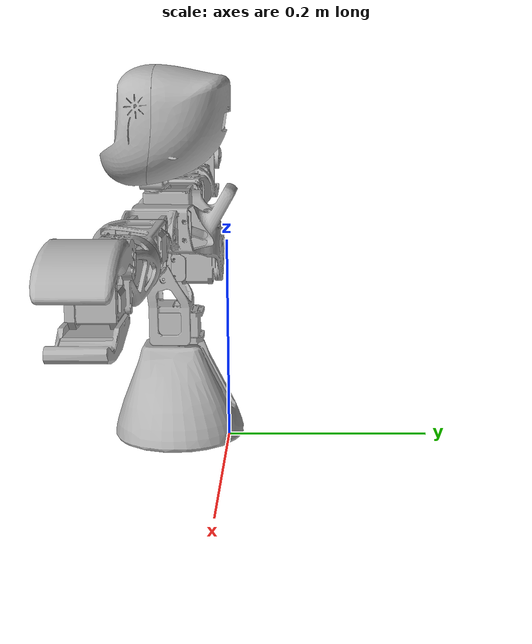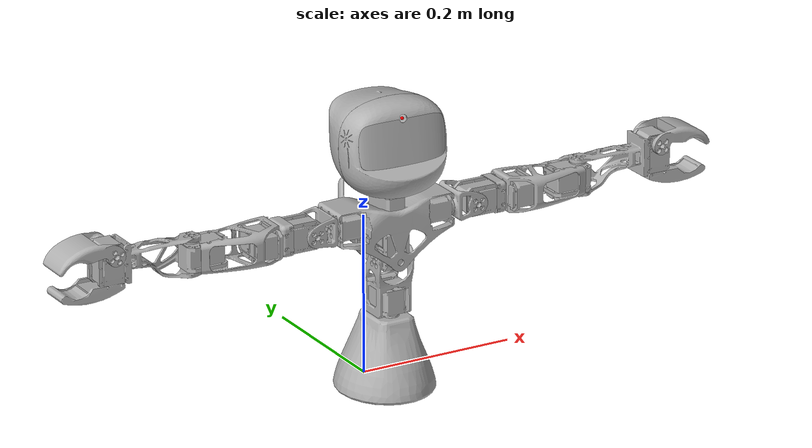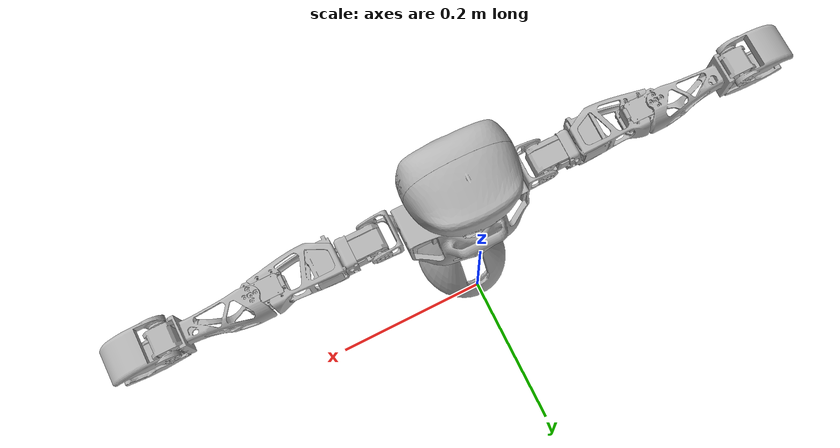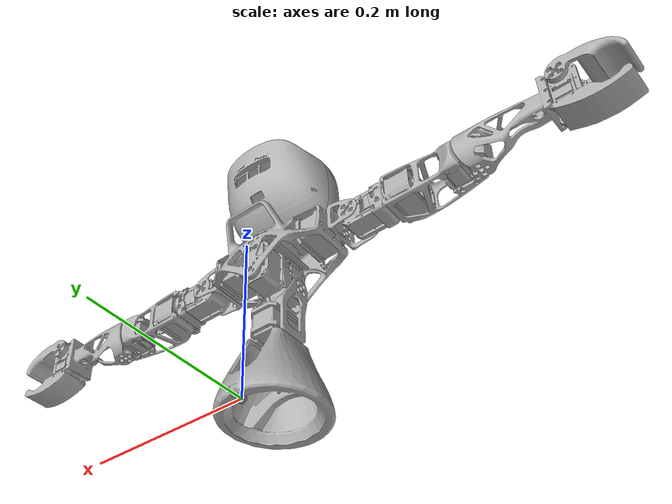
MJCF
<mujoco model="Cogni-robot">

  <default>
    <geom contype="1" conaffinity="0" density="1000" condim="3" solref="0.002 1" solimp="0.9 0.95 0.001"/>

    <default class="sts3215">
         <joint damping="1.0" frictionloss="0.1" armature="0.01"/>
         <position kp="40" kv="4" forcerange="-4.0 4.0"/>
    </default>
  </default>

  <compiler angle="radian" meshdir="../meshes/" discardvisual="false"/>

  <asset>
    <material name="default_material" rgba="0.7 0.7 0.7 1" />
    <mesh name="base_link.stl" file="base_link.stl" scale="0.001 0.001 0.001" />
    <mesh name="servo_sts3215_v1_1.stl" file="servo_sts3215_v1_1.stl" scale="0.001 0.001 0.001" />
    <mesh name="spine_default_1.stl" file="spine_default_1.stl" scale="0.001 0.001 0.001" />
    <mesh name="servo_sts3215_v1__1__1.stl" file="servo_sts3215_v1__1__1.stl" scale="0.001 0.001 0.001" />
    <mesh name="double_rotation_link_double_feetech_v1_1.stl" file="double_rotation_link_double_feetech_v1_1.stl" scale="0.001 0.001 0.001" />
    <mesh name="servo_sts3215_v1__2__1.stl" file="servo_sts3215_v1__2__1.stl" scale="0.001 0.001 0.001" />
    <mesh name="chest_1.stl" file="chest_1.stl" scale="0.001 0.001 0.001" />
    <mesh name="servo_sts3215_v1__3__1.stl" file="servo_sts3215_v1__3__1.stl" scale="0.001 0.001 0.001" />
    <mesh name="shoulder_left_v1_1.stl" file="shoulder_left_v1_1.stl" scale="0.001 0.001 0.001" />
    <mesh name="servo_sts3215_v1__9__1.stl" file="servo_sts3215_v1__9__1.stl" scale="0.001 0.001 0.001" />
    <mesh name="arm_connector_Feetech_v1__1__1.stl" file="arm_connector_Feetech_v1__1__1.stl" scale="0.001 0.001 0.001" />
    <mesh name="servo_sts3215_v1__10__1.stl" file="servo_sts3215_v1__10__1.stl" scale="0.001 0.001 0.001" />
    <mesh name="upper_arm_double_right_v1__1__1.stl" file="upper_arm_double_right_v1__1__1.stl" scale="0.001 0.001 0.001" />
    <mesh name="servo_sts3215_v1__11__1.stl" file="servo_sts3215_v1__11__1.stl" scale="0.001 0.001 0.001" />
    <mesh name="avant_bras_left_1.stl" file="avant_bras_left_1.stl" scale="0.001 0.001 0.001" />
    <mesh name="servo_sts3215_v1__12__1.stl" file="servo_sts3215_v1__12__1.stl" scale="0.001 0.001 0.001" />
    <mesh name="Prehenseur_fifty_fifty_Main_right_v1__1__1.stl" file="Prehenseur_fifty_fifty_Main_right_v1__1__1.stl" scale="0.001 0.001 0.001" />
    <mesh name="Prehenseur_fifty_fifty_Pousse_right_v1__1__1.stl" file="Prehenseur_fifty_fifty_Pousse_right_v1__1__1.stl" scale="0.001 0.001 0.001" />
    <mesh name="servo_sts3215_v1__4__1.stl" file="servo_sts3215_v1__4__1.stl" scale="0.001 0.001 0.001" />
    <mesh name="shoulder_right_v1_1.stl" file="shoulder_right_v1_1.stl" scale="0.001 0.001 0.001" />
    <mesh name="servo_sts3215_v1__5__1.stl" file="servo_sts3215_v1__5__1.stl" scale="0.001 0.001 0.001" />
    <mesh name="arm_connector_Feetech_v1_1.stl" file="arm_connector_Feetech_v1_1.stl" scale="0.001 0.001 0.001" />
    <mesh name="servo_sts3215_v1__6__1.stl" file="servo_sts3215_v1__6__1.stl" scale="0.001 0.001 0.001" />
    <mesh name="upper_arm_double_right_v1_1.stl" file="upper_arm_double_right_v1_1.stl" scale="0.001 0.001 0.001" />
    <mesh name="servo_sts3215_v1__7__1.stl" file="servo_sts3215_v1__7__1.stl" scale="0.001 0.001 0.001" />
    <mesh name="avant_bras_right_v1_1.stl" file="avant_bras_right_v1_1.stl" scale="0.001 0.001 0.001" />
    <mesh name="servo_sts3215_v1__8__1.stl" file="servo_sts3215_v1__8__1.stl" scale="0.001 0.001 0.001" />
    <mesh name="Prehenseur_fifty_fifty_Pousse_right_v1_1.stl" file="Prehenseur_fifty_fifty_Pousse_right_v1_1.stl" scale="0.001 0.001 0.001" />
    <mesh name="Prehenseur_fifty_fifty_Main_right_v1_1.stl" file="Prehenseur_fifty_fifty_Main_right_v1_1.stl" scale="0.001 0.001 0.001" />
    <mesh name="servo_sts3215-2_1.stl" file="servo_sts3215-2_1.stl" scale="0.001 0.001 0.001" />
    <mesh name="neck_v2_1.stl" file="neck_v2_1.stl" scale="0.001 0.001 0.001" />
    <mesh name="servo-sts3215-2_1.stl" file="servo-sts3215-2_1.stl" scale="0.001 0.001 0.001" />
    <mesh name="head_back_v2_1.stl" file="head_back_v2_1.stl" scale="0.001 0.001 0.001" />
    <mesh name="head_face_v1_1.stl" file="head_face_v1_1.stl" scale="0.001 0.001 0.001" />
    <mesh name="screen_v1_1.stl" file="screen_v1_1.stl" scale="0.001 0.001 0.001" />
    <mesh name="double_rotation_link_double_feetech_v1__1__1.stl" file="double_rotation_link_double_feetech_v1__1__1.stl" scale="0.001 0.001 0.001" />
  </asset>

  <worldbody>
    <!-- Robot -->
    <body name="root" pos="0 0 1.1102230246251565e-16" quat="1 0 0 0">
      <site name="root_site" pos="0 0 0" quat="1 0 0 0" />
      <!-- Position de la base du robot -->
      <body name="base_link" pos="0 0 0.045" quat="1 0 0 0">
        <inertial pos="-1.1219501603328655e-05 -0.056526453492820504 -0.007126953017833521" quat="1.0 0.0 0.0 0.0" mass="1.000" diaginertia="0.002516 0.00237 0.002929" />
        <geom name="base_link_collision_0" pos="0 0 0" quat="1.0 0.0 0.0 0.0" type="mesh" mesh="base_link.stl" rgba="0 0 0 0" />
        <geom name="base_link_visual_0" pos="0 0 0" quat="1.0 0.0 0.0 0.0" material="default_material" type="mesh" mesh="base_link.stl" />
        <body name="servo_taille" pos="2e-06 -0.064517 0.050918" quat="1.0 0.0 0.0 0.0">
          <joint name="rotation_taille" class="sts3215" type="hinge" range="-1.95 1.95" axis="0.0 -0.0 -1.0" />
          <inertial pos="2.4590533479708028e-05 0.013876940357002876 0.018114364058204026" quat="1.0 0.0 0.0 0.0" mass="0.063" diaginertia="9.9e-05 5.8e-05 9.2e-05" />
          <geom name="servo_sts3215_v1_1_collision_0" pos="-2e-06 0.064517 -0.050918" quat="1.0 0.0 0.0 0.0" type="mesh" mesh="servo_sts3215_v1_1.stl" rgba="0 0 0 0" />
          <geom name="servo_sts3215_v1_1_visual_0" pos="-2e-06 0.064517 -0.050918" quat="1.0 0.0 0.0 0.0" material="default_material" type="mesh" mesh="servo_sts3215_v1_1.stl" />
          <body name="spine_default_1" pos="-0.014996 -0.002914 0.034531" quat="1.0 0.0 0.0 0.0">
            <inertial pos="0.015025892749360163 0.009651890072813522 0.005568688082809373" quat="1.0 0.0 0.0 0.0" mass="0.060" diaginertia="0.00011 0.000136 8.4e-05" />
            <geom name="spine_default_1_collision_0" pos="0.014994 0.067431 -0.085449" quat="1.0 0.0 0.0 0.0" type="mesh" mesh="spine_default_1.stl" rgba="0 0 0 0" />
            <geom name="spine_default_1_visual_0" pos="0.014994 0.067431 -0.085449" quat="1.0 0.0 0.0 0.0" material="default_material" type="mesh" mesh="spine_default_1.stl" />
            <body name="servo_roulis_torse" pos="0.0334 0.001747 0.038861" quat="1.0 0.0 0.0 0.0">
              <joint name="rotation_roulis_torse" class="sts3215" type="hinge" range="-0.436332 0.959931" axis="1.0 0.0 0.0" />
              <inertial pos="-0.018113958627718682 -2.3729273459310862e-05 0.013877191834498925" quat="1.0 0.0 0.0 0.0" mass="0.063" diaginertia="9.2e-05 9.9e-05 5.8e-05" />
              <geom name="servo_sts3215_v1__1__1_collision_0" pos="-0.018406 0.065684 -0.12431" quat="1.0 0.0 0.0 0.0" type="mesh" mesh="servo_sts3215_v1__1__1.stl" rgba="0 0 0 0" />
              <geom name="servo_sts3215_v1__1__1_visual_0" pos="-0.018406 0.065684 -0.12431" quat="1.0 0.0 0.0 0.0" material="default_material" type="mesh" mesh="servo_sts3215_v1__1__1.stl" />
              <body name="double_rotation_link_double_feetech_v1_1" pos="-0.00455 0.014996 0.014086" quat="1.0 0.0 0.0 0.0">
                <inertial pos="0.002024750176840232 0.003710607069467957 -0.008500173682925022" quat="1.0 0.0 0.0 0.0" mass="0.010" diaginertia="1e-06 1e-06 0.0" />
                <geom name="double_rotation_link_double_feetech_v1_1_collision_0" pos="-0.013856 0.050688 -0.138396" quat="1.0 0.0 0.0 0.0" type="mesh" mesh="double_rotation_link_double_feetech_v1_1.stl" rgba="0 0 0 0" />
                <geom name="double_rotation_link_double_feetech_v1_1_visual_0" pos="-0.013856 0.050688 -0.138396" quat="1.0 0.0 0.0 0.0" material="default_material" type="mesh" mesh="double_rotation_link_double_feetech_v1_1.stl" />
                <body name="servo_sts3215_v1__2__1" pos="-0.0001 0.0069 -0.017" quat="1.0 0.0 0.0 0.0">
                  <inertial pos="-0.014980074180713072 0.016417183569695955 0.01679119183449934" quat="1.0 0.0 0.0 0.0" mass="0.063" diaginertia="9.9e-05 9.2e-05 5.8e-05" />
                  <geom name="servo_sts3215_v1__2__1_collision_0" pos="-0.013756 0.043788 -0.121396" quat="1.0 0.0 0.0 0.0" type="mesh" mesh="servo_sts3215_v1__2__1.stl" rgba="0 0 0 0" />
                  <geom name="servo_sts3215_v1__2__1_visual_0" pos="-0.013756 0.043788 -0.121396" quat="1.0 0.0 0.0 0.0" material="default_material" type="mesh" mesh="servo_sts3215_v1__2__1.stl" />
                  <body name="poitrine" pos="-0.015004 0.034532 0.002914" quat="1.0 0.0 0.0 0.0">
                    <joint name="rotation_tangage_torse" class="sts3215" type="hinge" range="-0.698132 0.785398" axis="0.0 -1.0 0.0" />
                    <inertial pos="0.00015427959004198446 -0.03577287736870712 0.04773966957719847" quat="1.0 0.0 0.0 0.0" mass="0.250" diaginertia="0.000783 0.001095 0.001456" />
                    <geom name="chest_1_collision_0" pos="0.001248 0.009256 -0.12431" quat="1.0 0.0 0.0 0.0" type="mesh" mesh="chest_1.stl" rgba="0 0 0 0" />
                    <geom name="chest_1_visual_0" pos="0.001248 0.009256 -0.12431" quat="1.0 0.0 0.0 0.0" material="default_material" type="mesh" mesh="chest_1.stl" />
                    <body name="servo_sts3215_v1__3__1" pos="0.072458 -0.189067 -0.071966" quat="1.0 0.0 0.0 0.0">
                      <inertial pos="-0.012768569454018337 0.14162474034428557 0.12350985679084983" quat="1.0 0.0 0.0 0.0" mass="0.063" diaginertia="9.2e-05 5.8e-05 9.9e-05" />
                      <geom name="servo_sts3215_v1__3__1_collision_0" pos="-0.07121 0.198323 -0.052344" quat="1.0 0.0 0.0 0.0" type="mesh" mesh="servo_sts3215_v1__3__1.stl" rgba="0 0 0 0" />
                      <geom name="servo_sts3215_v1__3__1_visual_0" pos="-0.07121 0.198323 -0.052344" quat="1.0 0.0 0.0 0.0" material="default_material" type="mesh" mesh="servo_sts3215_v1__3__1.stl" />
                      <body name="epaule_gauche" pos="0.005346 0.127748 0.123486" quat="1.0 0.0 0.0 0.0">
                        <joint name="rotation_epaule_zy_gauche" class="sts3215" type="hinge" range="-0.96 3.926991" axis="-1.0 0.0 -0.0" />
                        <inertial pos="0.013069081541579305 0.007818922979524329 0.0014314415043581996" quat="1.0 0.0 0.0 0.0" mass="0.030" diaginertia="3.4e-05 2.1e-05 3.9e-05" />
                        <geom name="shoulder_left_v1_1_collision_0" pos="-0.076556 0.070575 -0.17583" quat="1.0 0.0 0.0 0.0" type="mesh" mesh="shoulder_left_v1_1.stl" rgba="0 0 0 0" />
                        <geom name="shoulder_left_v1_1_visual_0" pos="-0.076556 0.070575 -0.17583" quat="1.0 0.0 0.0 0.0" material="default_material" type="mesh" mesh="shoulder_left_v1_1.stl" />
                        <body name="servo_epaule_xy_gauche" pos="0.03009 -0.009968 -8e-06" quat="1.0 0.0 0.0 0.0">
                          <joint name="rotation_epaule_xy_gauche" class="sts3215" type="hinge" range="-1.80 1.67" axis="-0.0 -1.0 0.0" />
                          <inertial pos="0.01387684152521737 0.018114728191638348 2.3728104074888234e-05" quat="1.0 0.0 0.0 0.0" mass="0.063" diaginertia="5.8e-05 9.2e-05 9.9e-05" />
                          <geom name="servo_sts3215_v1__9__1_collision_0" pos="-0.106646 0.080543 -0.175822" quat="1.0 0.0 0.0 0.0" type="mesh" mesh="servo_sts3215_v1__9__1.stl" rgba="0 0 0 0" />
                          <geom name="servo_sts3215_v1__9__1_visual_0" pos="-0.106646 0.080543 -0.175822" quat="1.0 0.0 0.0 0.0" material="default_material" type="mesh" mesh="servo_sts3215_v1__9__1.stl" />
                          <body name="arm_connector_Feetech_v1__1__1" pos="-0.131532 -0.148625 0.075992" quat="1.0 0.0 0.0 0.0">
                            <inertial pos="0.17019711259990794 0.1701672691210283 -0.07599164900255378" quat="1.0 0.0 0.0 0.0" mass="0.020" diaginertia="1.7e-05 9e-06 1e-05" />
                            <geom name="arm_connector_Feetech_v1__1__1_collision_0" pos="0.024886 0.229168 -0.251814" quat="1.0 0.0 0.0 0.0" type="mesh" mesh="arm_connector_Feetech_v1__1__1.stl" rgba="0 0 0 0" />
                            <geom name="arm_connector_Feetech_v1__1__1_visual_0" pos="0.024886 0.229168 -0.251814" quat="1.0 0.0 0.0 0.0" material="default_material" type="mesh" mesh="arm_connector_Feetech_v1__1__1.stl" />
                            <body name="servo_biceps_gauche" pos="0.175717 0.178097 -0.076092" quat="1.0 0.0 0.0 0.0">
                              <joint name="rotation_biceps_gauche" class="sts3215" type="hinge" range="-1.570796 1.658063" axis="-1.0 0.0 0.0" />
                              <inertial pos="0.01811490301050525 -0.013877229014664351 2.404053025442665e-05" quat="1.0 0.0 0.0 0.0" mass="0.063" diaginertia="9.2e-05 5.8e-05 9.9e-05" />
                              <geom name="servo_sts3215_v1__10__1_collision_0" pos="-0.150831 0.051071 -0.175722" quat="1.0 0.0 0.0 0.0" type="mesh" mesh="servo_sts3215_v1__10__1.stl" rgba="0 0 0 0" />
                              <geom name="servo_sts3215_v1__10__1_visual_0" pos="-0.150831 0.051071 -0.175722" quat="1.0 0.0 0.0 0.0" material="default_material" type="mesh" mesh="servo_sts3215_v1__10__1.stl" />
                              <body name="upper_arm_double_right_v1__1__1" pos="-0.172025 0.142882 0.082157" quat="1.0 0.0 0.0 0.0">
                                <inertial pos="0.22087327265401402 -0.15592362178307972 -0.08201641031321949" quat="1.0 0.0 0.0 0.0" mass="0.070" diaginertia="8.4e-05 0.00017 0.000183" />
                                <geom name="upper_arm_double_right_v1__1__1_collision_0" pos="0.021194 -0.091811 -0.257879" quat="1.0 0.0 0.0 0.0" type="mesh" mesh="upper_arm_double_right_v1__1__1.stl" rgba="0 0 0 0" />
                                <geom name="upper_arm_double_right_v1__1__1_visual_0" pos="0.021194 -0.091811 -0.257879" quat="1.0 0.0 0.0 0.0" material="default_material" type="mesh" mesh="upper_arm_double_right_v1__1__1.stl" />
                                <body name="servo_sts3215_v1__11__1" pos="0.241626 -0.145968 -0.066944" quat="1.0 0.0 0.0 0.0">
                                  <inertial pos="0.023508770620472463 -0.008519981071643715 -0.013563488463505524" quat="1.0 0.0 0.0 0.0" mass="0.063" diaginertia="5.8e-05 9.9e-05 9.2e-05" />
                                  <geom name="servo_sts3215_v1__11__1_collision_0" pos="-0.220432 0.054157 -0.190935" quat="1.0 0.0 0.0 0.0" type="mesh" mesh="servo_sts3215_v1__11__1.stl" rgba="0 0 0 0" />
                                  <geom name="servo_sts3215_v1__11__1_visual_0" pos="-0.220432 0.054157 -0.190935" quat="1.0 0.0 0.0 0.0" material="default_material" type="mesh" mesh="servo_sts3215_v1__11__1.stl" />
                                  <body name="avant_bras_gauche" pos="0.037386 -0.008496 0.004551" quat="1.0 0.0 0.0 0.0">
                                    <joint name="rotation_coude_gauche" class="sts3215" type="hinge" range="0.0 2.40" axis="0.0 -0.0 -1.0" />
                                    <inertial pos="0.04401274040087039 0.008650758693461914 -0.013814967864695243" quat="1.0 0.0 0.0 0.0" mass="0.080" diaginertia="7.3e-05 0.000311 0.000295" />
                                    <geom name="avant_bras_left_1_collision_0" pos="-0.257818 0.062653 -0.195486" quat="1.0 0.0 0.0 0.0" type="mesh" mesh="avant_bras_left_1.stl" rgba="0 0 0 0" />
                                    <geom name="avant_bras_left_1_visual_0" pos="-0.257818 0.062653 -0.195486" quat="1.0 0.0 0.0 0.0" material="default_material" type="mesh" mesh="avant_bras_left_1.stl" />
                                    <body name="servo_sts3215_v1__12__1" pos="0.073594 0.204126 -0.366567" quat="1.0 0.0 0.0 0.0">
                                      <inertial pos="0.03147486599174237 -0.2013020696547163 0.3583558952391649" quat="1.0 0.0 0.0 0.0" mass="0.063" diaginertia="9.9e-05 9.2e-05 5.8e-05" />
                                      <geom name="servo_sts3215_v1__12__1_collision_0" pos="-0.331412 -0.141473 0.171081" quat="1.0 0.0 0.0 0.0" type="mesh" mesh="servo_sts3215_v1__12__1.stl" rgba="0 0 0 0" />
                                      <geom name="servo_sts3215_v1__12__1_visual_0" pos="-0.331412 -0.141473 0.171081" quat="1.0 0.0 0.0 0.0" material="default_material" type="mesh" mesh="servo_sts3215_v1__12__1.stl" />
                                      <body name="main_gauche" pos="0.031451 -0.219416 0.372233" quat="1.0 0.0 0.0 0.0">
                                        <joint name="rotation_pince_gauche" class="sts3215" type="hinge" range="-1.570796 0.401426" axis="0.0 1.0 -0.0" />
                                        <inertial pos="0.03632040746598875 0.018552363625857257 0.005882952672508379" quat="1.0 0.0 0.0 0.0" mass="0.080" diaginertia="7.9e-05 0.000109 0.000166" />
                                        <geom name="Prehenseur_fifty_fifty_Main_right_v1__1__1_collision_0" pos="-0.362863 0.077943 -0.201152" quat="1.0 0.0 0.0 0.0" type="mesh" mesh="Prehenseur_fifty_fifty_Main_right_v1__1__1.stl" rgba="0 0 0 0" />
                                        <geom name="Prehenseur_fifty_fifty_Main_right_v1__1__1_visual_0" pos="-0.362863 0.077943 -0.201152" quat="1.0 0.0 0.0 0.0" material="default_material" type="mesh" mesh="Prehenseur_fifty_fifty_Main_right_v1__1__1.stl" />
                                      </body>
                                      <body name="Prehenseur_fifty_fifty_Pousse_right_v1__1__1" pos="0.104844 -0.364483 0.7141" quat="1.0 0.0 0.0 0.0">
                                        <inertial pos="-0.04738040301219948 0.1644526771798254 -0.38698301391426126" quat="1.0 0.0 0.0 0.0" mass="0.050" diaginertia="2.9e-05 9.5e-05 0.000118" />
                                        <geom name="Prehenseur_fifty_fifty_Pousse_right_v1__1__1_collision_0" pos="-0.436256 0.22301 -0.543019" quat="1.0 0.0 0.0 0.0" type="mesh" mesh="Prehenseur_fifty_fifty_Pousse_right_v1__1__1.stl" rgba="0 0 0 0" />
                                        <geom name="Prehenseur_fifty_fifty_Pousse_right_v1__1__1_visual_0" pos="-0.436256 0.22301 -0.543019" quat="1.0 0.0 0.0 0.0" material="default_material" type="mesh" mesh="Prehenseur_fifty_fifty_Pousse_right_v1__1__1.stl" />
                                      </body>
                                    </body>
                                  </body>
                                </body>
                              </body>
                            </body>
                          </body>
                        </body>
                      </body>
                    </body>
                    <body name="servo_sts3215_v1__4__1" pos="-0.075142 -0.189067 -0.071966" quat="1.0 0.0 0.0 0.0">
                      <inertial pos="0.01535895970710844 0.14162474034429673 0.12346961705796619" quat="1.0 0.0 0.0 0.0" mass="0.063" diaginertia="9.2e-05 5.8e-05 9.9e-05" />
                      <geom name="servo_sts3215_v1__4__1_collision_0" pos="0.07639 0.198323 -0.052344" quat="1.0 0.0 0.0 0.0" type="mesh" mesh="servo_sts3215_v1__4__1.stl" rgba="0 0 0 0" />
                      <geom name="servo_sts3215_v1__4__1_visual_0" pos="0.07639 0.198323 -0.052344" quat="1.0 0.0 0.0 0.0" material="default_material" type="mesh" mesh="servo_sts3215_v1__4__1.stl" />
                      <body name="epaule_droite" pos="-0.002755 0.127748 0.123494" quat="1.0 0.0 0.0 0.0">
                        <joint name="rotation_epaule_zy_droite" class="sts3215" type="hinge" range="-3.93 0.959931" axis="1.0 -0.0 -0.0" />
                        <inertial pos="-0.01306709110545963 0.007820696038384783 0.0014317075357701825" quat="1.0 0.0 0.0 0.0" mass="0.030" diaginertia="3.4e-05 2.1e-05 3.9e-05" />
                        <geom name="shoulder_right_v1_1_collision_0" pos="0.079145 0.070575 -0.175838" quat="1.0 0.0 0.0 0.0" type="mesh" mesh="shoulder_right_v1_1.stl" rgba="0 0 0 0" />
                        <geom name="shoulder_right_v1_1_visual_0" pos="0.079145 0.070575 -0.175838" quat="1.0 0.0 0.0 0.0" material="default_material" type="mesh" mesh="shoulder_right_v1_1.stl" />
                        <body name="servo_epaule_xy_droite" pos="-0.03009 -0.009968 -8e-06" quat="1.0 0.0 0.0 0.0">
                          <joint name="rotation_epaule_xy_droite" class="sts3215" type="hinge" range="-1.80 1.67" axis="0.0 1.0 -0.0" />
                          <inertial pos="-0.013877451272128485 0.01811472819166042 -2.4511628808843167e-05" quat="1.0 0.0 0.0 0.0" mass="0.063" diaginertia="5.8e-05 9.2e-05 9.9e-05" />
                          <geom name="servo_sts3215_v1__5__1_collision_0" pos="0.109235 0.080543 -0.17583" quat="1.0 0.0 0.0 0.0" type="mesh" mesh="servo_sts3215_v1__5__1.stl" rgba="0 0 0 0" />
                          <geom name="servo_sts3215_v1__5__1_visual_0" pos="0.109235 0.080543 -0.17583" quat="1.0 0.0 0.0 0.0" material="default_material" type="mesh" mesh="servo_sts3215_v1__5__1.stl" />
                          <body name="arm_connector_Feetech_v1_1" pos="-0.159121 -0.148625 -0.075992" quat="1.0 0.0 0.0 0.0">
                            <inertial pos="0.12045527765318095 0.17016726912105506 0.07599086547781965" quat="1.0 0.0 0.0 0.0" mass="0.020" diaginertia="1.7e-05 9e-06 1e-05" />
                            <geom name="arm_connector_Feetech_v1_1_collision_0" pos="0.268356 0.229168 -0.099838" quat="1.0 0.0 0.0 0.0" type="mesh" mesh="arm_connector_Feetech_v1_1.stl" rgba="0 0 0 0" />
                            <geom name="arm_connector_Feetech_v1_1_visual_0" pos="0.268356 0.229168 -0.099838" quat="1.0 0.0 0.0 0.0" material="default_material" type="mesh" mesh="arm_connector_Feetech_v1_1.stl" />
                            <body name="servo_biceps_droit" pos="0.114935 0.178097 0.076091" quat="1.0 0.0 0.0 0.0">
                              <joint name="rotation_biceps_droit" class="sts3215" type="hinge" range="-1.745329 1.745329" axis="1.0 -0.0 0.0" />
                              <inertial pos="-0.018114512757417434 -0.01387722901463357 -2.3824054988352827e-05" quat="1.0 0.0 0.0 0.0" mass="0.063" diaginertia="9.2e-05 5.8e-05 9.9e-05" />
                              <geom name="servo_sts3215_v1__6__1_collision_0" pos="0.153421 0.051071 -0.175929" quat="1.0 0.0 0.0 0.0" type="mesh" mesh="servo_sts3215_v1__6__1.stl" rgba="0 0 0 0" />
                              <geom name="servo_sts3215_v1__6__1_visual_0" pos="0.153421 0.051071 -0.175929" quat="1.0 0.0 0.0 0.0" material="default_material" type="mesh" mesh="servo_sts3215_v1__6__1.stl" />
                              <body name="upper_arm_double_right_v1_1" pos="0.172225 -0.170472 -0.065156" quat="1.0 0.0 0.0 0.0">
                                <inertial pos="-0.22107288240092587 0.15743037821695768 0.0650156267884857" quat="1.0 0.0 0.0 0.0" mass="0.070" diaginertia="8.4e-05 0.00017 0.000183" />
                                <geom name="upper_arm_double_right_v1_1_collision_0" pos="-0.018804 0.221543 -0.110773" quat="1.0 0.0 0.0 0.0" type="mesh" mesh="upper_arm_double_right_v1_1.stl" rgba="0 0 0 0" />
                                <geom name="upper_arm_double_right_v1_1_visual_0" pos="-0.018804 0.221543 -0.110773" quat="1.0 0.0 0.0 0.0" material="default_material" type="mesh" mesh="upper_arm_double_right_v1_1.stl" />
                                <body name="servo_sts3215_v1__7__1" pos="-0.248126 0.145236 0.080352" quat="1.0 0.0 0.0 0.0">
                                  <inertial pos="-0.017208380367383813 0.015020258661285056 -0.01356346876911077" quat="1.0 0.0 0.0 0.0" mass="0.063" diaginertia="5.8e-05 9.9e-05 9.2e-05" />
                                  <geom name="servo_sts3215_v1__7__1_collision_0" pos="0.229322 0.076307 -0.191125" quat="1.0 0.0 0.0 0.0" type="mesh" mesh="servo_sts3215_v1__7__1.stl" rgba="0 0 0 0" />
                                  <geom name="servo_sts3215_v1__7__1_visual_0" pos="0.229322 0.076307 -0.191125" quat="1.0 0.0 0.0 0.0" material="default_material" type="mesh" mesh="servo_sts3215_v1__7__1.stl" />
                                  <body name="avant_bras_droit" pos="-0.031085 0.014996 0.004551" quat="1.0 0.0 0.0 0.0">
                                    <joint name="rotation_coude_droit" class="sts3215" type="hinge" range="-2.4 0.0" axis="-0.0 -0.0 -1.0" />
                                    <inertial pos="-0.04401322687622705 0.008650797389780515 -0.013814355351612906" quat="1.0 0.0 0.0 0.0" mass="0.080" diaginertia="7.3e-05 0.000311 0.000295" />
                                    <geom name="avant_bras_right_v1_1_collision_0" pos="0.260407 0.061311 -0.195676" quat="1.0 0.0 0.0 0.0" type="mesh" mesh="avant_bras_right_v1_1.stl" rgba="0 0 0 0" />
                                    <geom name="avant_bras_right_v1_1_visual_0" pos="0.260407 0.061311 -0.195676" quat="1.0 0.0 0.0 0.0" material="default_material" type="mesh" mesh="avant_bras_right_v1_1.stl" />
                                    <body name="servo_sts3215_v1__8__1" pos="-0.090049 -0.01094 0.00858" quat="1.0 0.0 0.0 0.0">
                                      <inertial pos="-0.014980236005768921 0.01356378910879575 -0.016791085066439754" quat="1.0 0.0 0.0 0.0" mass="0.063" diaginertia="9.9e-05 9.2e-05 5.8e-05" />
                                      <geom name="servo_sts3215_v1__8__1_collision_0" pos="0.350456 0.072251 -0.204256" quat="1.0 0.0 0.0 0.0" type="mesh" mesh="servo_sts3215_v1__8__1.stl" rgba="0 0 0 0" />
                                      <geom name="servo_sts3215_v1__8__1_visual_0" pos="0.350456 0.072251 -0.204256" quat="1.0 0.0 0.0 0.0" material="default_material" type="mesh" mesh="servo_sts3215_v1__8__1.stl" />
                                      <body name="Prehenseur_fifty_fifty_Pousse_right_v1_1" pos="0.057247 -0.149807 -0.37237" quat="1.0 0.0 0.0 0.0">
                                        <inertial pos="-0.09825620673470975 0.16512151311312523 0.3243400057801342" quat="1.0 0.0 0.0 0.0" mass="0.050" diaginertia="2.9e-05 9.5e-05 0.000118" />
                                        <geom name="Prehenseur_fifty_fifty_Pousse_right_v1_1_collision_0" pos="0.293209 0.222058 0.168114" quat="1.0 0.0 0.0 0.0" type="mesh" mesh="Prehenseur_fifty_fifty_Pousse_right_v1_1.stl" rgba="0 0 0 0" />
                                        <geom name="Prehenseur_fifty_fifty_Pousse_right_v1_1_visual_0" pos="0.293209 0.222058 0.168114" quat="1.0 0.0 0.0 0.0" material="default_material" type="mesh" mesh="Prehenseur_fifty_fifty_Pousse_right_v1_1.stl" />
                                      </body>
                                      <body name="main_droite" pos="-0.015004 -0.004551 -0.002914" quat="1.0 0.0 0.0 0.0">
                                        <joint name="rotation_pince_droite" class="sts3215" type="hinge" range="-0.401426 1.745329" axis="0.0 1.0 -0.0" />
                                        <inertial pos="-0.03631683785255063 0.018447497238708865 0.005876678058039098" quat="1.0 0.0 0.0 0.0" mass="0.080" diaginertia="7.9e-05 0.000109 0.000166" />
                                        <geom name="Prehenseur_fifty_fifty_Main_right_v1_1_collision_0" pos="0.36546 0.076802 -0.201342" quat="1.0 0.0 0.0 0.0" type="mesh" mesh="Prehenseur_fifty_fifty_Main_right_v1_1.stl" rgba="0 0 0 0" />
                                        <geom name="Prehenseur_fifty_fifty_Main_right_v1_1_visual_0" pos="0.36546 0.076802 -0.201342" quat="1.0 0.0 0.0 0.0" material="default_material" type="mesh" mesh="Prehenseur_fifty_fifty_Main_right_v1_1.stl" />
                                      </body>
                                    </body>
                                  </body>
                                </body>
                              </body>
                            </body>
                          </body>
                        </body>
                      </body>
                    </body>
                    <body name="servo_sts3215-2_1" pos="-0.010281 -0.052439 0.047526" quat="1.0 0.0 0.0 0.0">
                      <inertial pos="0.010250157404470425 0.004721873144410249 0.016400350717485745" quat="1.0 0.0 0.0 0.0" mass="0.063" diaginertia="7.1e-05 3.8e-05 6e-05" />
                      <geom name="servo_sts3215-2_1_collision_0" pos="0.011529 0.061695 -0.171836" quat="1.0 0.0 0.0 0.0" type="mesh" mesh="servo_sts3215-2_1.stl" rgba="0 0 0 0" />
                      <geom name="servo_sts3215-2_1_visual_0" pos="0.011529 0.061695 -0.171836" quat="1.0 0.0 0.0 0.0" material="default_material" type="mesh" mesh="servo_sts3215-2_1.stl" />
                      <body name="cou" pos="0.01025 -0.0083 0.0346" quat="1.0 0.0 0.0 0.0">
                        <joint name="rotation_cou_zx" class="sts3215" type="hinge" range="-1.832596 1.919862" axis="-0.0 -0.0 -1.0" />
                        <inertial pos="0.0007485223224610761 -9.349216530497861e-05 0.01047807820130392" quat="1.0 0.0 0.0 0.0" mass="0.035" diaginertia="7e-06 2.5e-05 2.2e-05" />
                        <geom name="neck_v2_1_collision_0" pos="0.001279 0.069995 -0.206436" quat="1.0 0.0 0.0 0.0" type="mesh" mesh="neck_v2_1.stl" rgba="0 0 0 0" />
                        <geom name="neck_v2_1_visual_0" pos="0.001279 0.069995 -0.206436" quat="1.0 0.0 0.0 0.0" material="default_material" type="mesh" mesh="neck_v2_1.stl" />
                        <body name="tete" pos="0.017831 0.000119 0.020034" quat="1.0 0.0 0.0 0.0">
                          <joint name="rotation_cou_yx" class="sts3215" type="hinge" range="-0.45 0.40" axis="1.0 -0.0 -0.0" />
                          <inertial pos="-0.018200236746651933 0.01185966221025403 0.005376001252874213" quat="1.0 0.0 0.0 0.0" mass="0.063" diaginertia="6e-05 4.3e-05 6.5e-05" />
                          <geom name="tete_collision_0" pos="-0.016552 0.069876 -0.22647" quat="1.0 0.0 0.0 0.0" type="mesh" mesh="servo-sts3215-2_1.stl" rgba="0 0 0 0" />
                          <geom name="tete_visual_0" pos="-0.016552 0.069876 -0.22647" quat="1.0 0.0 0.0 0.0" material="default_material" type="mesh" mesh="servo-sts3215-2_1.stl" />
                          <body name="head_back_v2_1" pos="0.220532 -0.028617 0.060095" quat="1.0 0.0 0.0 0.0">
                            <inertial pos="-0.2399997142999622 0.06546375235283343 -0.019336533745128448" quat="1.0 0.0 0.0 0.0" mass="0.150" diaginertia="0.00084 0.001375 0.001028" />
                            <geom name="head_back_v2_1_collision_0" pos="-0.237084 0.098493 -0.286565" quat="1.0 0.0 0.0 0.0" type="mesh" mesh="head_back_v2_1.stl" rgba="0 0 0 0" />
                            <geom name="head_back_v2_1_visual_0" pos="-0.237084 0.098493 -0.286565" quat="1.0 0.0 0.0 0.0" material="default_material" type="mesh" mesh="head_back_v2_1.stl" />
                            <body name="head_face" pos="-0.239834 0.038658 0.032147" quat="1.0 0.0 0.0 0.0">
                               <!-- Camera -->
                              <camera name="head_cam" pos="0 -0.035 -0.013" euler="30 0 15.7" fovy="60"/>
                              <geom type="sphere"     pos="0 -0.035 -0.013" size="0.002" rgba="1 0 0 1" contype="0" conaffinity="0"/>

                              <!-- Fake Screen -->
                              <inertial pos="-4.459929631812562e-08 -0.028186198727073175 -0.056621570075358396" quat="1.0 0.0 0.0 0.0" mass="0.100" diaginertia="0.000531 0.001043 0.000671" />
                              <geom name="head_face_collision_0" pos="0.00275 0.059835 -0.318712" quat="1.0 0.0 0.0 0.0" type="mesh" mesh="head_face_v1_1.stl" rgba="0 0 0 0" />
                              <geom name="head_face_visual_0" pos="0.00275 0.059835 -0.318712" quat="1.0 0.0 0.0 0.0" material="default_material" type="mesh" mesh="head_face_v1_1.stl" />
                              <body name="screen_v1_1" pos="-0.002749 -0.312936 -0.210216" quat="1.0 0.0 0.0 0.0">
                                <inertial pos="0.0027494900833098072 0.2744593858544422 0.16906337877995842" quat="1.0 0.0 0.0 0.0" mass="0.060" diaginertia="1.5e-05 7.3e-05 5.8e-05" />
                                <geom name="screen_v1_1_collision_0" pos="0.005499 0.372771 -0.108496" quat="1.0 0.0 0.0 0.0" type="mesh" mesh="screen_v1_1.stl" rgba="0 0 0 0" />
                                <geom name="screen_v1_1_visual_0" pos="0.005499 0.372771 -0.108496" quat="1.0 0.0 0.0 0.0" material="default_material" type="mesh" mesh="screen_v1_1.stl" />
                              </body>
                            </body>
                          </body>
                        </body>
                      </body>
                    </body>
                  </body>
                </body>
              </body>
              <body name="double_rotation_link_double_feetech_v1__1__1" pos="-0.034531 0.014996 -0.002914" quat="1.0 0.0 0.0 0.0">
                <inertial pos="-0.0020246958284255816 0.003710607069468068 0.008499821732979834" quat="1.0 0.0 0.0 0.0" mass="0.010" diaginertia="1e-06 1e-06 0.0" />
                <geom name="double_rotation_link_double_feetech_v1__1__1_collision_0" pos="0.016125 0.050688 -0.121396" quat="1.0 0.0 0.0 0.0" type="mesh" mesh="double_rotation_link_double_feetech_v1__1__1.stl" rgba="0 0 0 0" />
                <geom name="double_rotation_link_double_feetech_v1__1__1_visual_0" pos="0.016125 0.050688 -0.121396" quat="1.0 0.0 0.0 0.0" material="default_material" type="mesh" mesh="double_rotation_link_double_feetech_v1__1__1.stl" />
              </body>
            </body>
          </body>
        </body>
      </body>
    </body>
  </worldbody>

  <actuator>
    <position name="act_taille" class="sts3215" joint="rotation_taille" ctrlrange="-1.95 1.95" ctrllimited="true" />
    <position name="act_roulis_torse" class="sts3215" joint="rotation_roulis_torse" ctrlrange="-0.436332 0.959931" ctrllimited="true" />
    <position name="act_tangage_torse" class="sts3215" joint="rotation_tangage_torse" ctrlrange="-0.698132 0.785398" ctrllimited="true" />
    <position name="act_epaule_zy_gauche" class="sts3215" joint="rotation_epaule_zy_gauche" ctrlrange="-0.96 3.926991" ctrllimited="true" />
    <position name="act_epaule_xy_gauche" class="sts3215" joint="rotation_epaule_xy_gauche" ctrlrange="-1.8 1.67" ctrllimited="true" />
    <position name="act_biceps_gauche" class="sts3215" joint="rotation_biceps_gauche" ctrlrange="-1.570796 1.658063" ctrllimited="true" />
    <position name="act_coude_gauche" class="sts3215" joint="rotation_coude_gauche" ctrlrange="0.0 2.4" ctrllimited="true" />
    <position name="act_pince_gauche" class="sts3215" joint="rotation_pince_gauche" ctrlrange="-1.570796 0.401426" ctrllimited="true" />
    <position name="act_epaule_zy_droite" class="sts3215" joint="rotation_epaule_zy_droite" ctrlrange="-3.93 0.959931" ctrllimited="true" />
    <position name="act_epaule_xy_droite" class="sts3215" joint="rotation_epaule_xy_droite" ctrlrange="-1.8 1.67" ctrllimited="true" />
    <position name="act_biceps_droit" class="sts3215" joint="rotation_biceps_droit" ctrlrange="-1.745329 1.745329" ctrllimited="true" />
    <position name="act_coude_droit" class="sts3215" joint="rotation_coude_droit" ctrlrange="-2.4 0.0" ctrllimited="true" />
    <position name="act_pince_droite" class="sts3215" joint="rotation_pince_droite" ctrlrange="-0.401426 1.745329" ctrllimited="true" />
    <position name="act_cou_zx" class="sts3215" joint="rotation_cou_zx" ctrlrange="-1.832596 1.919862" ctrllimited="true" />
    <position name="act_cou_yx" class="sts3215" joint="rotation_cou_yx" ctrlrange="-0.45 0.4" ctrllimited="true" />
  </actuator>

  <sensor>
    <framepos name="base_link_pos" objtype="site" objname="root_site" />
    <framequat name="base_link_quat" objtype="site" objname="root_site" />
    <framelinvel name="base_link_vel" objtype="site" objname="root_site" />
    <frameangvel name="base_link_ang_vel" objtype="site" objname="root_site" />
  </sensor>
</mujoco>
